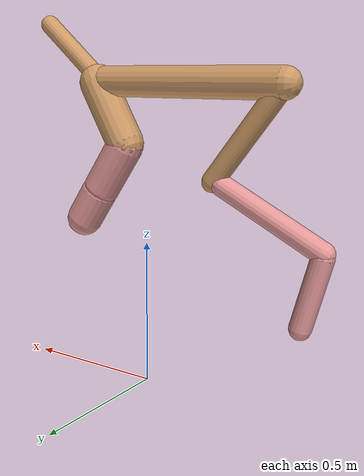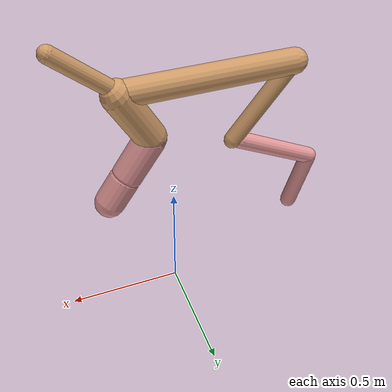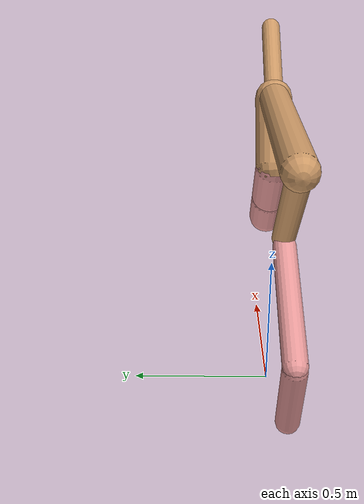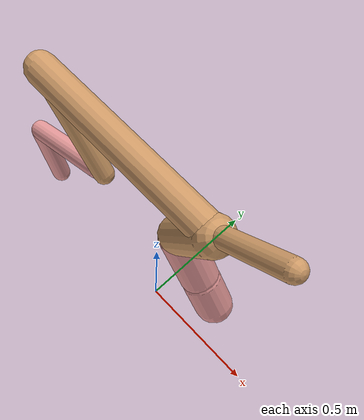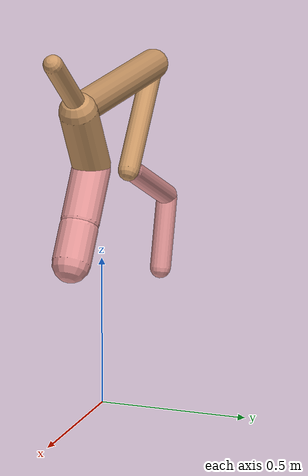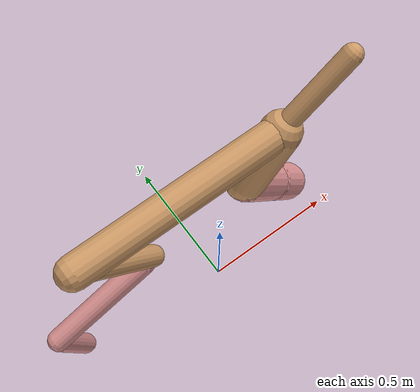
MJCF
<mujoco model="cheetah">
  <compiler angle="radian" coordinate="local" inertiafromgeom="true" settotalmass="14" />
  <default>
    <joint armature=".1" damping=".01" limited="true" solimplimit="0 .8 .03" solreflimit=".02 1" stiffness="8" />
    <geom conaffinity="0" condim="3" contype="1" friction="0.8 .1 .1" rgba="0.8 0.6 .4 1" solimp="0.0 0.8 0.01" solref="0.02 1" />
    <motor ctrllimited="true" ctrlrange="-1 1" />
  </default>
  <size nstack="300000" nuser_geom="1" />
  <option gravity="0 0 -9.81" timestep="0.01" />
  <worldbody>
    <body name="torso" pos="0.0 0.0 1.0467835522682416">
      <joint armature="0" axis="1 0 0" damping="0" limited="false" name="ignorex" pos="0 0 0" stiffness="0" type="slide" />
      <joint armature="0" axis="0 0 1" damping="0" limited="false" name="ignorez" pos="0 0 0" stiffness="0" type="slide" />
      <joint armature="0" axis="0 1 0" damping="0" limited="false" name="ignorey" pos="0 0 0" stiffness="0" type="hinge" />
      <geom fromto="-0.5 0.0 0.0 0.21146797274388407 0.0 0.0" name="torso" size="0.05236421325417595" type="capsule" />
      <geom axisangle="0 1 0 .87" name="head" pos="0.31146797274388405 0.0 0.1" size="0.032341835006358635 0.15" type="capsule" />

      <body name="bthigh" pos="-.5 0 0">
        <joint axis="0 1 0" damping="6" name="bthigh" pos="0 0 0" range="-.52 1.05" stiffness="240" type="hinge" />
        <geom axisangle="0 1 0 -3.8" name="bthigh" pos="0.12598174678646284 0.0 -0.1637762708224017" size="0.03590042203502233 0.18761323311770764" type="capsule" />
        <body name="bshin" pos="0.21196349357292568 0.0 -0.3175525416448034">
          <joint axis="0 1 0" damping="4.5" name="bshin" pos="0 0 0" range="-.785 .785" stiffness="180" type="hinge" />
          <geom axisangle="0 1 0 -2.03" name="bshin" pos="-0.17942872523816814 0.0 -0.08971436261908407" rgba="0.9 0.6 0.6 1" size="0.03590042203502233 0.19408265494935273" type="capsule" />
          <body name="bfoot" pos="-0.35885745047633627 0.0 -0.17942872523816814">
            <joint axis="0 1 0" damping="3" name="bfoot" pos="0 0 0" range="-.4 .785" stiffness="120" type="hinge" />
            <geom axisangle="0 1 0 -.27" name="bfoot" pos="0.03816238963529407 0.0 -0.12339172648745084" rgba="0.9 0.6 0.6 1" size="0.03590042203502233 0.12162513043492772" type="capsule" />
            <inertial mass="10" />
          </body>
        </body>
      </body>
      <body name="fthigh" pos="0.21146797274388407 0.0 0.0">
        <joint axis="0 1 0" damping="4.5" name="fthigh" pos="0 0 0" range="-1.5 0.8" stiffness="180" type="hinge" />
        <geom axisangle="0 1 0 .52" name="fthigh" pos="-0.06264778261467308 0.0 -0.10739619876801097" size="0.0638994501590322 0.1184085331108695" type="capsule" />
        <body name="fshin" pos="-0.12529556522934615 0.0 -0.21479239753602195">
          <joint axis="0 1 0" damping="3" name="fshin" pos="0 0 0" range="-1.2 1.1" stiffness="120" type="hinge" />
          <geom axisangle="0 1 0 -.6" name="fshin" pos="0.05819116090816711 0.0 -0.08057237664207753" rgba="0.9 0.6 0.6 1" size="0.0638994501590322 0.09437071059964035" type="capsule" />
          <body name="ffoot" pos="0.11638232181633422 0.0 -0.16114475328415506">
            <joint axis="0 1 0" damping="1.5" name="ffoot" pos="0 0 0" range="-3.1 -0.3" stiffness="60" type="hinge" />
            <geom axisangle="0 1 0 -.6" name="ffoot" pos="0.04084713342700164 0.0 -0.06353998533089145" rgba="0.9 0.6 0.6 1" size="0.0638994501590322 0.06232028058466817" type="capsule" />
            <inertial mass="10" />
          </body>
        </body>
      </body>
    </body>
  </worldbody>
  <actuator>
    <motor gear="120" joint="bthigh" name="bthigh" />
    <motor gear="90" joint="bshin" name="bshin" />
    <motor gear="60" joint="bfoot" name="bfoot" />
    <motor gear="120" joint="fthigh" name="fthigh" />
    <motor gear="60" joint="fshin" name="fshin" />
    <motor gear="30" joint="ffoot" name="ffoot" />
  </actuator>
</mujoco>
